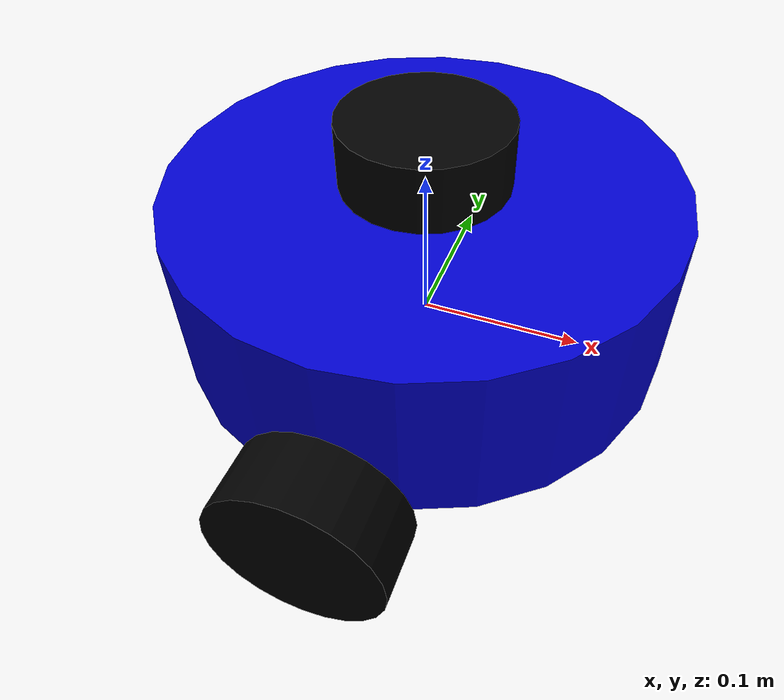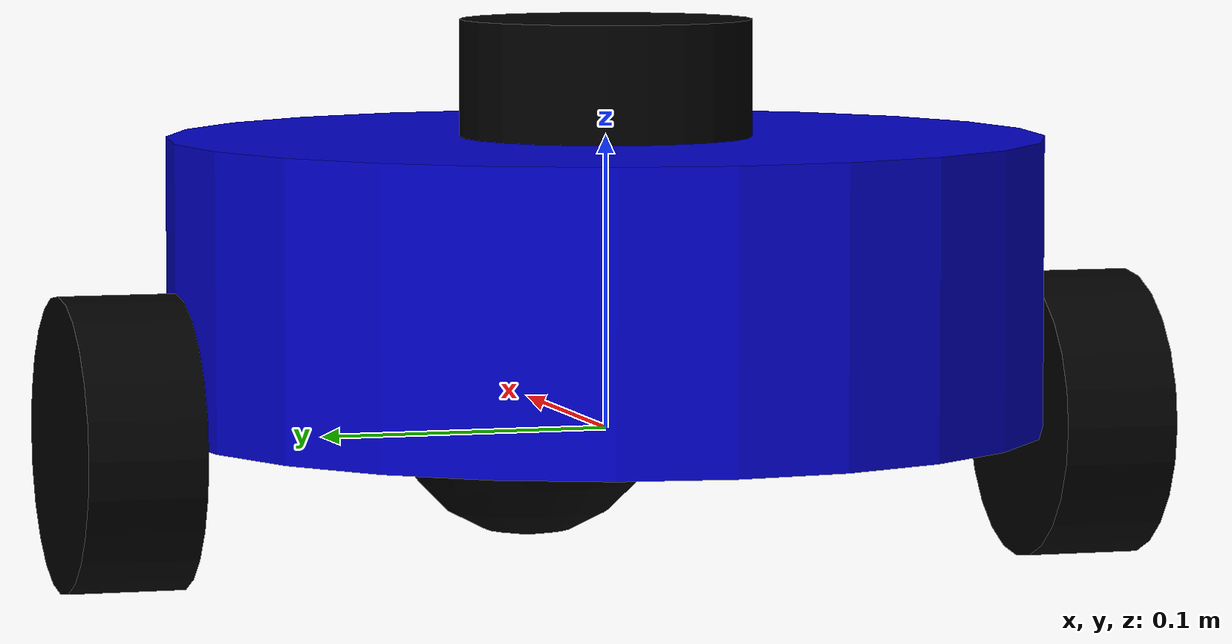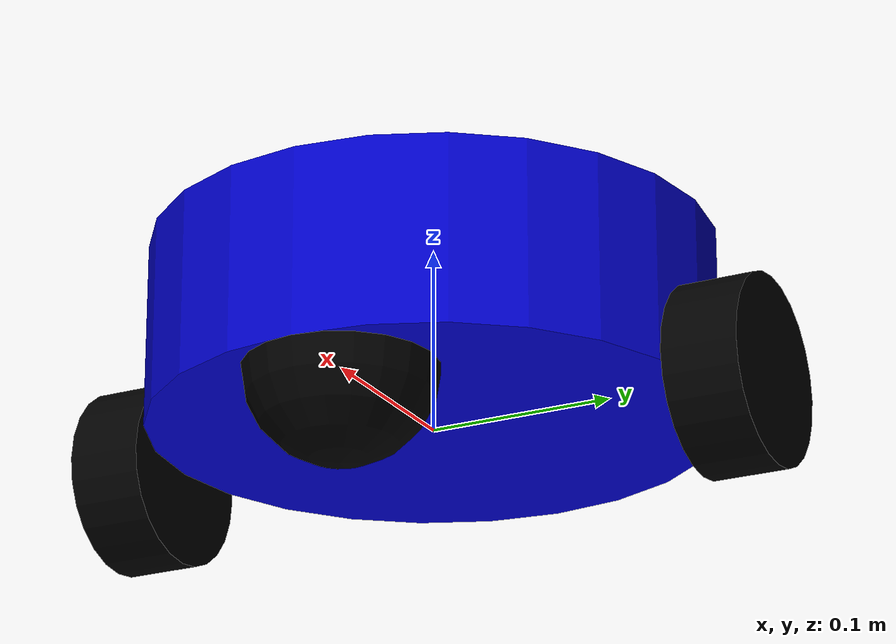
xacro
<?xml version="1.0"?>
<robot name="robot_diferencial" xmlns:xacro="http://www.ros.org/wiki/xacro">

  <material name="azul">
    <color rgba="0 0 0.8 1"/>
  </material>
  <material name="negro">
    <color rgba="0 0 0 1"/>
  </material>

  <link name="base_footprint"/>

  <joint name="base_footprint_joint" type="fixed">
    <parent link="base_footprint"/>
    <child link="base_link"/>
    <origin xyz="0 0 0.05" rpy="0 0 0"/>
  </joint>

  <link name="base_link">
    <visual>
      <geometry>
        <cylinder radius="0.15" length="0.1"/>
      </geometry>
      <material name="azul"/>
    </visual>
    <collision>
      <geometry>
        <cylinder radius="0.15" length="0.1"/>
      </geometry>
    </collision>
    <inertial>
      <origin xyz="0 0 -0.05" rpy="0 0 0"/>
      <mass value="2.0"/>
      <inertia ixx="0.0129" ixy="0" ixz="0" iyy="0.0129" iyz="0" izz="0.0225"/>
    </inertial>
  </link>

  <link name="left_wheel">
    <visual>
      <geometry>
        <cylinder radius="0.05" length="0.04"/>
      </geometry>
      <material name="negro"/>
    </visual>
    <collision>
      <geometry>
        <cylinder radius="0.05" length="0.04"/>
      </geometry>
    </collision>
    <inertial>
      <mass value="0.2"/>
      <inertia ixx="0.00015" ixy="0" ixz="0" iyy="0.00015" iyz="0" izz="0.00025"/>
    </inertial>
  </link>

  <joint name="left_wheel_joint" type="continuous">
    <parent link="base_link"/>
    <child link="left_wheel"/>
    <origin xyz="0 0.17 -0.05" rpy="-1.5708 0 0"/>
    <axis xyz="0 0 1"/>
  </joint>

  <link name="right_wheel">
    <visual>
      <geometry>
        <cylinder radius="0.05" length="0.04"/>
      </geometry>
      <material name="negro"/>
    </visual>
    <collision>
      <geometry>
        <cylinder radius="0.05" length="0.04"/>
      </geometry>
    </collision>
    <inertial>
      <mass value="0.2"/>
      <inertia ixx="0.00015" ixy="0" ixz="0" iyy="0.00015" iyz="0" izz="0.00025"/>
    </inertial>
  </link>

  <joint name="right_wheel_joint" type="continuous">
    <parent link="base_link"/>
    <child link="right_wheel"/>
    <origin xyz="0 -0.17 -0.05" rpy="-1.5708 0 0"/>
    <axis xyz="0 0 1"/>
  </joint>

  <link name="caster_wheel">
    <visual>
      <geometry>
        <sphere radius="0.05"/>
      </geometry>
      <material name="negro"/>
    </visual>
    <collision>
      <geometry>
        <sphere radius="0.05"/>
      </geometry>
    </collision>
    <inertial>
      <mass value="0.1"/>
      <inertia ixx="0.0001" ixy="0" ixz="0" iyy="0.0001" iyz="0" izz="0.0001"/>
    </inertial>
  </link>

  <joint name="caster_wheel_joint" type="fixed">
    <parent link="base_link"/>
    <child link="caster_wheel"/>
    <origin xyz="0.1 0 -0.05" rpy="0 0 0"/>
  </joint>

  <gazebo reference="caster_wheel">
    <mu>0.0</mu>
    <mu2>0.0</mu2>
  </gazebo>

  <gazebo reference="base_link">
    <visual>
      <material>
        <ambient>0.0 0.0 0.8 1.0</ambient>
        <diffuse>0.0 0.0 0.8 1.0</diffuse>
      </material>
    </visual>
  </gazebo>

  <gazebo reference="left_wheel">
    <visual>
      <material>
        <ambient>0.0 0.0 0.0 1.0</ambient>
        <diffuse>0.0 0.0 0.0 1.0</diffuse>
      </material>
    </visual>
  </gazebo>

  <gazebo reference="right_wheel">
    <visual>
      <material>
        <ambient>0.0 0.0 0.0 1.0</ambient>
        <diffuse>0.0 0.0 0.0 1.0</diffuse>
      </material>
    </visual>
  </gazebo>

  <gazebo reference="laser_link">
    <visual>
      <material>
        <ambient>0.0 0.0 0.0 1.0</ambient>
        <diffuse>0.0 0.0 0.0 1.0</diffuse>
      </material>
    </visual>
  </gazebo>

  <link name="laser_link">
    <visual>
      <geometry>
        <cylinder radius="0.05" length="0.04"/>
      </geometry>
      <material name="negro"/>
    </visual>
    <collision>
      <geometry>
        <cylinder radius="0.05" length="0.04"/>
      </geometry>
    </collision>
    <inertial>
      <mass value="0.1"/>
      <inertia ixx="0.0001" ixy="0" ixz="0" iyy="0.0001" iyz="0" izz="0.0001"/>
    </inertial>
  </link>

  <joint name="laser_joint" type="fixed">
    <parent link="base_link"/>
    <child link="laser_link"/>
    <origin xyz="0 0 0.07" rpy="0 0 0"/>
  </joint>

  <gazebo>
    <plugin filename="gz-sim-diff-drive-system" name="gz::sim::systems::DiffDrive">
      <left_joint>left_wheel_joint</left_joint>
      <right_joint>right_wheel_joint</right_joint>
      <wheel_separation>0.34</wheel_separation>
      <wheel_radius>0.05</wheel_radius>
      <odom_publish_frequency>30</odom_publish_frequency>
      <topic>cmd_vel</topic>
      <odom_topic>odom</odom_topic>
      <frame_id>odom</frame_id>
      <child_frame_id>base_footprint</child_frame_id>
    </plugin>

    <plugin filename="gz-sim-joint-state-publisher-system" name="gz::sim::systems::JointStatePublisher">
      <topic>joint_states</topic>
    </plugin>
  </gazebo>

  <gazebo reference="laser_link">
    <sensor name="lidar" type="gpu_lidar">
      <pose>0 0 0 0 0 0</pose>
      <always_on>true</always_on>
      <visualize>true</visualize>
      <update_rate>10</update_rate>
      <ray>
        <scan>
          <horizontal>
            <samples>360</samples>
            <resolution>1.0</resolution>
            <min_angle>-3.14159</min_angle>
            <max_angle>3.14159</max_angle>
          </horizontal>
        </scan>
        <range>
          <min>0.15</min>
          <max>8.0</max>
          <resolution>0.01</resolution>
        </range>
      </ray>
      <topic>scan</topic>
      <gz_frame_id>laser_link</gz_frame_id>
    </sensor>
  </gazebo>

</robot>
